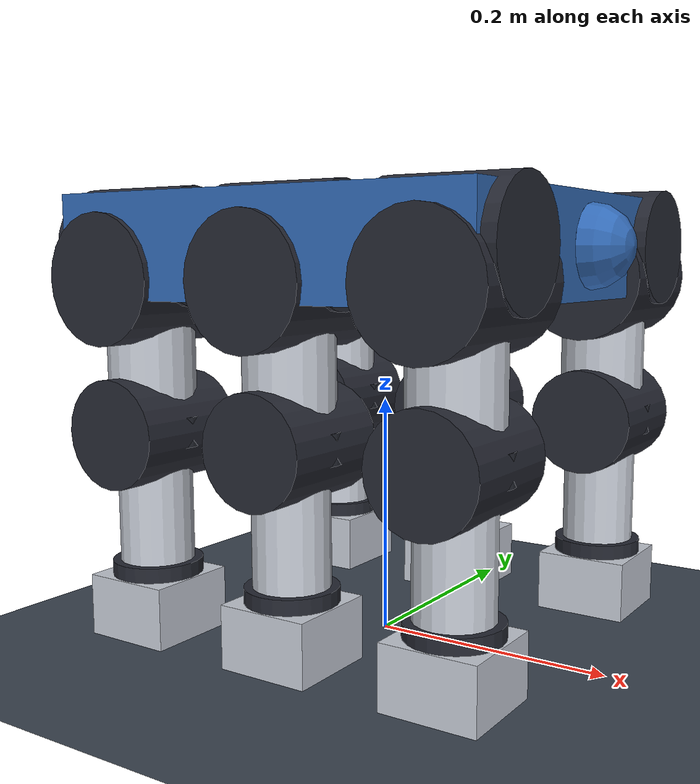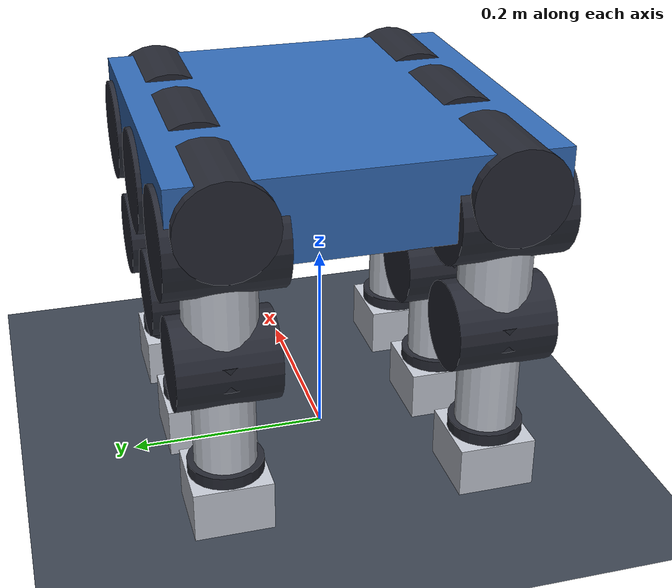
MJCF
<mujoco model="built_legged_26seg">
  <compiler angle="radian" autolimits="true"/>
  <option timestep="0.002" gravity="0 0 -9.81"/>
  <visual>
    <headlight ambient="0.45 0.45 0.48" diffuse="0.65 0.65 0.68" specular="0.22 0.22 0.22"/>
    <quality shadowsize="4096"/>
    <map znear="0.01" zfar="60"/>
  </visual>
  <default>
    <joint damping="0.8" armature="0.01"/>
    <geom friction="1 0.05 0.001"/>
  </default>
  <asset>
    <texture name="skybox" type="skybox" builtin="gradient" rgb1="0.16 0.18 0.23" rgb2="0.03 0.04 0.06" width="512" height="512"/>
    <texture name="grid" type="2d" builtin="checker" rgb1="0.21 0.24 0.29" rgb2="0.26 0.30 0.35" width="300" height="300"/>
    <material name="grid" texture="grid" texrepeat="6 6" specular="0.1" shininess="0.1" reflectance="0.02"/>
    <material name="mat_body" rgba="0.84 0.86 0.89 1" specular="0.35" shininess="0.45" reflectance="0.05"/>
    <material name="mat_joint" rgba="0.15 0.16 0.20 1" specular="0.6" shininess="0.7" reflectance="0.1"/>
    <material name="mat_accent" rgba="0.92 0.47 0.13 1" specular="0.45" shininess="0.55"/>
    <material name="mat_ee" rgba="0.22 0.24 0.29 1" specular="0.5" shininess="0.6"/>
    <material name="mat_alu" rgba="0.78 0.80 0.84 1" specular="0.55" shininess="0.5" reflectance="0.12"/>
    <material name="mat_steel" rgba="0.34 0.36 0.40 1" specular="0.7" shininess="0.7" reflectance="0.18"/>
    <material name="mat_cf" rgba="0.11 0.12 0.14 1" specular="0.45" shininess="0.4" reflectance="0.06"/>
    <material name="mat_ti" rgba="0.60 0.60 0.65 1" specular="0.5" shininess="0.55" reflectance="0.1"/>
    <material name="mat_shell" rgba="0.20 0.42 0.72 1" specular="0.4" shininess="0.5" reflectance="0.05"/>
    <material name="mat_metal" rgba="0.47 0.49 0.53 1" specular="0.78" shininess="0.78" reflectance="0.22"/>
    <material name="mat_rubber" rgba="0.13 0.13 0.15 1" specular="0.15" shininess="0.15"/>
  </asset>
  <worldbody>
    <light name="key" pos="1.6 -1.1 3.0" dir="-0.45 0.32 -1" diffuse="0.55 0.55 0.58" specular="0.25 0.25 0.25"/>
    <light name="fill" pos="-2.0 1.6 2.2" dir="0.5 -0.42 -1" diffuse="0.22 0.22 0.26"/>
    <geom name="floor" type="plane" size="3 3 0.1" material="grid"/>
    <body name="torso" pos="0.00000 0.00000 0.28580">
      <freejoint name="torso_free"/>
      <geom name="torso_geom" type="box" pos="0 0 0.04000" size="0.18000 0.18000 0.04000" mass="3.00000" material="mat_shell"/>
      <body name="head_0" pos="0.12000 0.00000 0.04000" euler="0.00000 1.57080 0.00000">
        <geom name="head_0_geom" type="capsule" fromto="0 0 0 0 0 0.06000" size="0.03200" mass="0.20000" material="mat_shell"/>
      </body>

      <body name="leg0_0" pos="0.14000 0.13000 0.04000" euler="3.14159 0.00000 0.00000">
        <joint name="leg0_0_joint" type="hinge" axis="1.0000 0.0000 0.0000" range="-0.7000 0.7000"/>
        <geom name="leg0_0_geom" type="capsule" fromto="0 0 0 0 0 0.02500" size="0.03200" mass="0.15000" material="mat_alu"/>
        <geom name="leg0_0_motor" type="cylinder" fromto="-0.05120 -0.00000 -0.00000 0.05120 0.00000 0.00000" size="0.04640" material="mat_joint" mass="0" contype="0" conaffinity="0"/>
        <body name="leg0_1" pos="0.00000 0.00000 0.02500">
          <joint name="leg0_1_joint" type="hinge" axis="0.0000 1.0000 0.0000" range="-3.1400 3.1400"/>
          <geom name="leg0_1_geom" type="capsule" fromto="0 0 0 0 0 0.12000" size="0.03500" mass="0.30000" material="mat_alu"/>
          <geom name="leg0_1_motor" type="cylinder" fromto="-0.00000 -0.05500 -0.00000 0.00000 0.05500 0.00000" size="0.05075" material="mat_joint" mass="0" contype="0" conaffinity="0"/>
          <geom name="leg0_1_collar" type="cylinder" fromto="0 0 0.10800 0 0 0.13200" size="0.04270" material="mat_joint" mass="0" contype="0" conaffinity="0"/>
          <body name="leg0_2" pos="0.00000 0.00000 0.12000">
            <joint name="leg0_2_joint" type="hinge" axis="0.0000 1.0000 0.0000" range="-3.1400 3.1400"/>
            <geom name="leg0_2_geom" type="capsule" fromto="0 0 0 0 0 0.12000" size="0.03000" mass="0.30000" material="mat_alu"/>
            <geom name="leg0_2_motor" type="cylinder" fromto="-0.00000 -0.04800 -0.00000 0.00000 0.04800 0.00000" size="0.04350" material="mat_joint" mass="0" contype="0" conaffinity="0"/>
            <geom name="leg0_2_collar" type="cylinder" fromto="0 0 0.10800 0 0 0.13200" size="0.03660" material="mat_joint" mass="0" contype="0" conaffinity="0"/>
            <body name="leg0_3" pos="0.00000 0.00000 0.12000">
              <geom name="leg0_3_geom" type="box" pos="0 0 0.02500" size="0.03800 0.03800 0.02500" mass="0.30000" material="mat_alu"/>
            </body>

          </body>

        </body>

      </body>

      <body name="leg1_0" pos="0.14000 -0.13000 0.04000" euler="3.14159 0.00000 0.00000">
        <joint name="leg1_0_joint" type="hinge" axis="1.0000 0.0000 0.0000" range="-0.7000 0.7000"/>
        <geom name="leg1_0_geom" type="capsule" fromto="0 0 0 0 0 0.02500" size="0.03200" mass="0.15000" material="mat_alu"/>
        <geom name="leg1_0_motor" type="cylinder" fromto="-0.05120 -0.00000 -0.00000 0.05120 0.00000 0.00000" size="0.04640" material="mat_joint" mass="0" contype="0" conaffinity="0"/>
        <body name="leg1_1" pos="0.00000 0.00000 0.02500">
          <joint name="leg1_1_joint" type="hinge" axis="0.0000 1.0000 0.0000" range="-3.1400 3.1400"/>
          <geom name="leg1_1_geom" type="capsule" fromto="0 0 0 0 0 0.12000" size="0.03500" mass="0.30000" material="mat_alu"/>
          <geom name="leg1_1_motor" type="cylinder" fromto="-0.00000 -0.05500 -0.00000 0.00000 0.05500 0.00000" size="0.05075" material="mat_joint" mass="0" contype="0" conaffinity="0"/>
          <geom name="leg1_1_collar" type="cylinder" fromto="0 0 0.10800 0 0 0.13200" size="0.04270" material="mat_joint" mass="0" contype="0" conaffinity="0"/>
          <body name="leg1_2" pos="0.00000 0.00000 0.12000">
            <joint name="leg1_2_joint" type="hinge" axis="0.0000 1.0000 0.0000" range="-3.1400 3.1400"/>
            <geom name="leg1_2_geom" type="capsule" fromto="0 0 0 0 0 0.12000" size="0.03000" mass="0.30000" material="mat_alu"/>
            <geom name="leg1_2_motor" type="cylinder" fromto="-0.00000 -0.04800 -0.00000 0.00000 0.04800 0.00000" size="0.04350" material="mat_joint" mass="0" contype="0" conaffinity="0"/>
            <geom name="leg1_2_collar" type="cylinder" fromto="0 0 0.10800 0 0 0.13200" size="0.03660" material="mat_joint" mass="0" contype="0" conaffinity="0"/>
            <body name="leg1_3" pos="0.00000 0.00000 0.12000">
              <geom name="leg1_3_geom" type="box" pos="0 0 0.02500" size="0.03800 0.03800 0.02500" mass="0.30000" material="mat_alu"/>
            </body>

          </body>

        </body>

      </body>

      <body name="leg2_0" pos="0.00000 0.13000 0.04000" euler="3.14159 0.00000 0.00000">
        <joint name="leg2_0_joint" type="hinge" axis="1.0000 0.0000 0.0000" range="-0.7000 0.7000"/>
        <geom name="leg2_0_geom" type="capsule" fromto="0 0 0 0 0 0.02500" size="0.03200" mass="0.15000" material="mat_alu"/>
        <geom name="leg2_0_motor" type="cylinder" fromto="-0.05120 -0.00000 -0.00000 0.05120 0.00000 0.00000" size="0.04640" material="mat_joint" mass="0" contype="0" conaffinity="0"/>
        <body name="leg2_1" pos="0.00000 0.00000 0.02500">
          <joint name="leg2_1_joint" type="hinge" axis="0.0000 1.0000 0.0000" range="-3.1400 3.1400"/>
          <geom name="leg2_1_geom" type="capsule" fromto="0 0 0 0 0 0.12000" size="0.03500" mass="0.30000" material="mat_alu"/>
          <geom name="leg2_1_motor" type="cylinder" fromto="-0.00000 -0.05500 -0.00000 0.00000 0.05500 0.00000" size="0.05075" material="mat_joint" mass="0" contype="0" conaffinity="0"/>
          <geom name="leg2_1_collar" type="cylinder" fromto="0 0 0.10800 0 0 0.13200" size="0.04270" material="mat_joint" mass="0" contype="0" conaffinity="0"/>
          <body name="leg2_2" pos="0.00000 0.00000 0.12000">
            <joint name="leg2_2_joint" type="hinge" axis="0.0000 1.0000 0.0000" range="-3.1400 3.1400"/>
            <geom name="leg2_2_geom" type="capsule" fromto="0 0 0 0 0 0.12000" size="0.03000" mass="0.30000" material="mat_alu"/>
            <geom name="leg2_2_motor" type="cylinder" fromto="-0.00000 -0.04800 -0.00000 0.00000 0.04800 0.00000" size="0.04350" material="mat_joint" mass="0" contype="0" conaffinity="0"/>
            <geom name="leg2_2_collar" type="cylinder" fromto="0 0 0.10800 0 0 0.13200" size="0.03660" material="mat_joint" mass="0" contype="0" conaffinity="0"/>
            <body name="leg2_3" pos="0.00000 0.00000 0.12000">
              <geom name="leg2_3_geom" type="box" pos="0 0 0.02500" size="0.03800 0.03800 0.02500" mass="0.30000" material="mat_alu"/>
            </body>

          </body>

        </body>

      </body>

      <body name="leg3_0" pos="0.00000 -0.13000 0.04000" euler="3.14159 0.00000 0.00000">
        <joint name="leg3_0_joint" type="hinge" axis="1.0000 0.0000 0.0000" range="-0.7000 0.7000"/>
        <geom name="leg3_0_geom" type="capsule" fromto="0 0 0 0 0 0.02500" size="0.03200" mass="0.15000" material="mat_alu"/>
        <geom name="leg3_0_motor" type="cylinder" fromto="-0.05120 -0.00000 -0.00000 0.05120 0.00000 0.00000" size="0.04640" material="mat_joint" mass="0" contype="0" conaffinity="0"/>
        <body name="leg3_1" pos="0.00000 0.00000 0.02500">
          <joint name="leg3_1_joint" type="hinge" axis="0.0000 1.0000 0.0000" range="-3.1400 3.1400"/>
          <geom name="leg3_1_geom" type="capsule" fromto="0 0 0 0 0 0.12000" size="0.03500" mass="0.30000" material="mat_alu"/>
          <geom name="leg3_1_motor" type="cylinder" fromto="-0.00000 -0.05500 -0.00000 0.00000 0.05500 0.00000" size="0.05075" material="mat_joint" mass="0" contype="0" conaffinity="0"/>
          <geom name="leg3_1_collar" type="cylinder" fromto="0 0 0.10800 0 0 0.13200" size="0.04270" material="mat_joint" mass="0" contype="0" conaffinity="0"/>
          <body name="leg3_2" pos="0.00000 0.00000 0.12000">
            <joint name="leg3_2_joint" type="hinge" axis="0.0000 1.0000 0.0000" range="-3.1400 3.1400"/>
            <geom name="leg3_2_geom" type="capsule" fromto="0 0 0 0 0 0.12000" size="0.03000" mass="0.30000" material="mat_alu"/>
            <geom name="leg3_2_motor" type="cylinder" fromto="-0.00000 -0.04800 -0.00000 0.00000 0.04800 0.00000" size="0.04350" material="mat_joint" mass="0" contype="0" conaffinity="0"/>
            <geom name="leg3_2_collar" type="cylinder" fromto="0 0 0.10800 0 0 0.13200" size="0.03660" material="mat_joint" mass="0" contype="0" conaffinity="0"/>
            <body name="leg3_3" pos="0.00000 0.00000 0.12000">
              <geom name="leg3_3_geom" type="box" pos="0 0 0.02500" size="0.03800 0.03800 0.02500" mass="0.30000" material="mat_alu"/>
            </body>

          </body>

        </body>

      </body>

      <body name="leg4_0" pos="-0.14000 0.13000 0.04000" euler="3.14159 0.00000 0.00000">
        <joint name="leg4_0_joint" type="hinge" axis="1.0000 0.0000 0.0000" range="-0.7000 0.7000"/>
        <geom name="leg4_0_geom" type="capsule" fromto="0 0 0 0 0 0.02500" size="0.03200" mass="0.15000" material="mat_alu"/>
        <geom name="leg4_0_motor" type="cylinder" fromto="-0.05120 -0.00000 -0.00000 0.05120 0.00000 0.00000" size="0.04640" material="mat_joint" mass="0" contype="0" conaffinity="0"/>
        <body name="leg4_1" pos="0.00000 0.00000 0.02500">
          <joint name="leg4_1_joint" type="hinge" axis="0.0000 1.0000 0.0000" range="-3.1400 3.1400"/>
          <geom name="leg4_1_geom" type="capsule" fromto="0 0 0 0 0 0.12000" size="0.03500" mass="0.30000" material="mat_alu"/>
          <geom name="leg4_1_motor" type="cylinder" fromto="-0.00000 -0.05500 -0.00000 0.00000 0.05500 0.00000" size="0.05075" material="mat_joint" mass="0" contype="0" conaffinity="0"/>
          <geom name="leg4_1_collar" type="cylinder" fromto="0 0 0.10800 0 0 0.13200" size="0.04270" material="mat_joint" mass="0" contype="0" conaffinity="0"/>
          <body name="leg4_2" pos="0.00000 0.00000 0.12000">
            <joint name="leg4_2_joint" type="hinge" axis="0.0000 1.0000 0.0000" range="-3.1400 3.1400"/>
            <geom name="leg4_2_geom" type="capsule" fromto="0 0 0 0 0 0.12000" size="0.03000" mass="0.30000" material="mat_alu"/>
            <geom name="leg4_2_motor" type="cylinder" fromto="-0.00000 -0.04800 -0.00000 0.00000 0.04800 0.00000" size="0.04350" material="mat_joint" mass="0" contype="0" conaffinity="0"/>
            <geom name="leg4_2_collar" type="cylinder" fromto="0 0 0.10800 0 0 0.13200" size="0.03660" material="mat_joint" mass="0" contype="0" conaffinity="0"/>
            <body name="leg4_3" pos="0.00000 0.00000 0.12000">
              <geom name="leg4_3_geom" type="box" pos="0 0 0.02500" size="0.03800 0.03800 0.02500" mass="0.30000" material="mat_alu"/>
            </body>

          </body>

        </body>

      </body>

      <body name="leg5_0" pos="-0.14000 -0.13000 0.04000" euler="3.14159 0.00000 0.00000">
        <joint name="leg5_0_joint" type="hinge" axis="1.0000 0.0000 0.0000" range="-0.7000 0.7000"/>
        <geom name="leg5_0_geom" type="capsule" fromto="0 0 0 0 0 0.02500" size="0.03200" mass="0.15000" material="mat_alu"/>
        <geom name="leg5_0_motor" type="cylinder" fromto="-0.05120 -0.00000 -0.00000 0.05120 0.00000 0.00000" size="0.04640" material="mat_joint" mass="0" contype="0" conaffinity="0"/>
        <body name="leg5_1" pos="0.00000 0.00000 0.02500">
          <joint name="leg5_1_joint" type="hinge" axis="0.0000 1.0000 0.0000" range="-3.1400 3.1400"/>
          <geom name="leg5_1_geom" type="capsule" fromto="0 0 0 0 0 0.12000" size="0.03500" mass="0.30000" material="mat_alu"/>
          <geom name="leg5_1_motor" type="cylinder" fromto="-0.00000 -0.05500 -0.00000 0.00000 0.05500 0.00000" size="0.05075" material="mat_joint" mass="0" contype="0" conaffinity="0"/>
          <geom name="leg5_1_collar" type="cylinder" fromto="0 0 0.10800 0 0 0.13200" size="0.04270" material="mat_joint" mass="0" contype="0" conaffinity="0"/>
          <body name="leg5_2" pos="0.00000 0.00000 0.12000">
            <joint name="leg5_2_joint" type="hinge" axis="0.0000 1.0000 0.0000" range="-3.1400 3.1400"/>
            <geom name="leg5_2_geom" type="capsule" fromto="0 0 0 0 0 0.12000" size="0.03000" mass="0.30000" material="mat_alu"/>
            <geom name="leg5_2_motor" type="cylinder" fromto="-0.00000 -0.04800 -0.00000 0.00000 0.04800 0.00000" size="0.04350" material="mat_joint" mass="0" contype="0" conaffinity="0"/>
            <geom name="leg5_2_collar" type="cylinder" fromto="0 0 0.10800 0 0 0.13200" size="0.03660" material="mat_joint" mass="0" contype="0" conaffinity="0"/>
            <body name="leg5_3" pos="0.00000 0.00000 0.12000">
              <geom name="leg5_3_geom" type="box" pos="0 0 0.02500" size="0.03800 0.03800 0.02500" mass="0.30000" material="mat_alu"/>
              <site name="ee_site" pos="0 0 0.05000" size="0.01"/>
            </body>

          </body>

        </body>

      </body>

    </body>
  </worldbody>
  <actuator>
    <motor name="leg0_0_motor" joint="leg0_0_joint" gear="1" forcerange="-14.00 14.00"/>
    <motor name="leg0_1_motor" joint="leg0_1_joint" gear="1" forcerange="-16.00 16.00"/>
    <motor name="leg0_2_motor" joint="leg0_2_joint" gear="1" forcerange="-12.00 12.00"/>
    <motor name="leg1_0_motor" joint="leg1_0_joint" gear="1" forcerange="-14.00 14.00"/>
    <motor name="leg1_1_motor" joint="leg1_1_joint" gear="1" forcerange="-16.00 16.00"/>
    <motor name="leg1_2_motor" joint="leg1_2_joint" gear="1" forcerange="-12.00 12.00"/>
    <motor name="leg2_0_motor" joint="leg2_0_joint" gear="1" forcerange="-14.00 14.00"/>
    <motor name="leg2_1_motor" joint="leg2_1_joint" gear="1" forcerange="-16.00 16.00"/>
    <motor name="leg2_2_motor" joint="leg2_2_joint" gear="1" forcerange="-12.00 12.00"/>
    <motor name="leg3_0_motor" joint="leg3_0_joint" gear="1" forcerange="-14.00 14.00"/>
    <motor name="leg3_1_motor" joint="leg3_1_joint" gear="1" forcerange="-16.00 16.00"/>
    <motor name="leg3_2_motor" joint="leg3_2_joint" gear="1" forcerange="-12.00 12.00"/>
    <motor name="leg4_0_motor" joint="leg4_0_joint" gear="1" forcerange="-14.00 14.00"/>
    <motor name="leg4_1_motor" joint="leg4_1_joint" gear="1" forcerange="-16.00 16.00"/>
    <motor name="leg4_2_motor" joint="leg4_2_joint" gear="1" forcerange="-12.00 12.00"/>
    <motor name="leg5_0_motor" joint="leg5_0_joint" gear="1" forcerange="-14.00 14.00"/>
    <motor name="leg5_1_motor" joint="leg5_1_joint" gear="1" forcerange="-16.00 16.00"/>
    <motor name="leg5_2_motor" joint="leg5_2_joint" gear="1" forcerange="-12.00 12.00"/>
  </actuator>
  <keyframe>
    <key name="rest" qpos="0.00000 0.00000 0.28580 1.00000 0.00000 0.00000 0.00000 0.00000 -0.55000 1.10000 0.00000 -0.55000 1.10000 0.00000 -0.55000 1.10000 0.00000 -0.55000 1.10000 0.00000 -0.55000 1.10000 0.00000 -0.55000 1.10000"/>
  </keyframe>
</mujoco>
